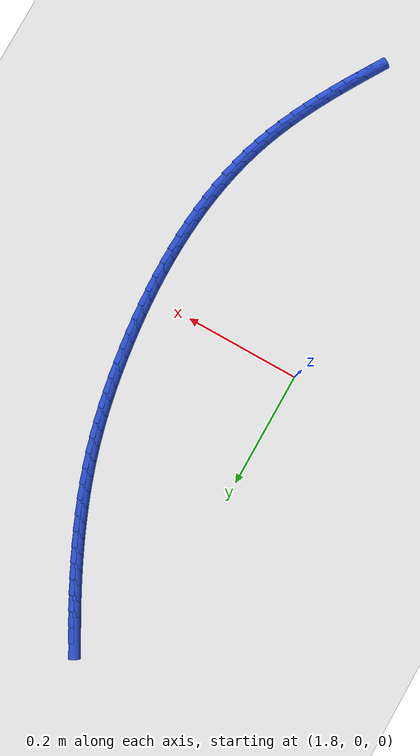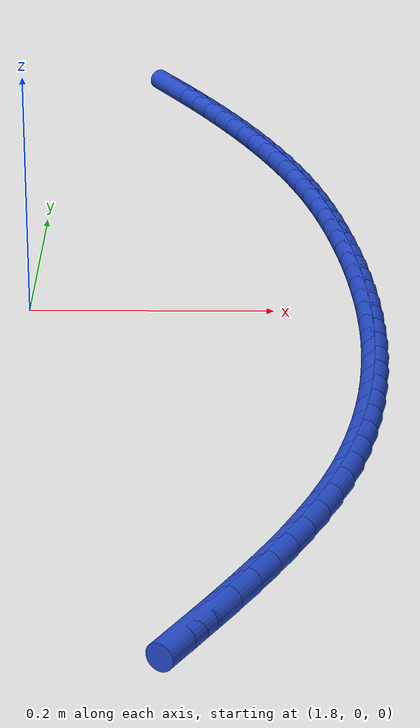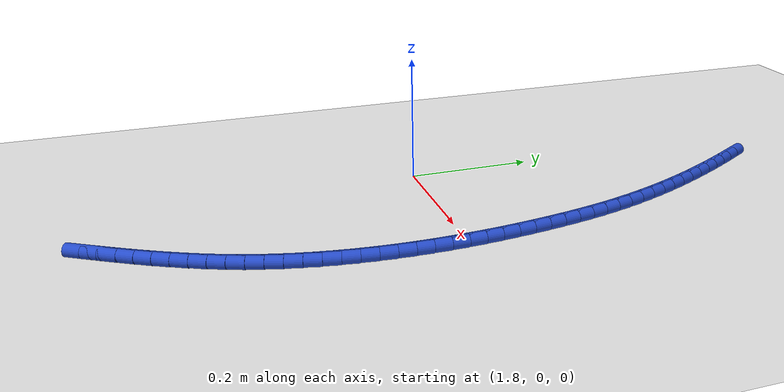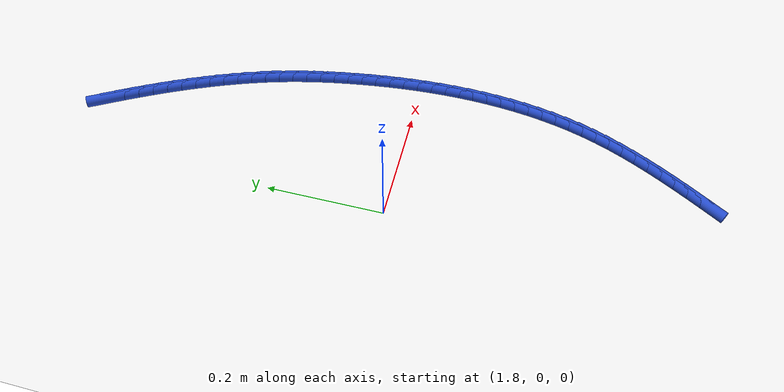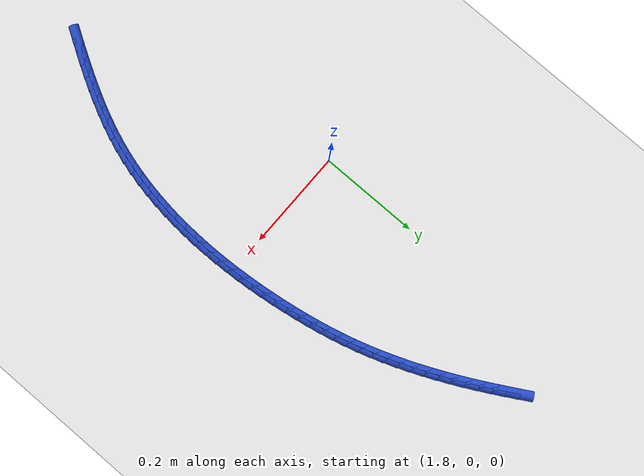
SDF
<sdf version="1.6">
 <world name="default">
  <model name="ground_plane">
   <static>1</static>
   <link name="link">
    <collision name="collision">
     <geometry><plane><normal>0 0 1</normal><size>100 100</size></plane></geometry>
     <surface><friction><ode><mu>100</mu><mu2>50</mu2></ode></friction></surface>
    </collision>
    <visual name="visual">
     <cast_shadows>0</cast_shadows>
     <geometry><plane><normal>0 0 1</normal><size>100 100</size></plane></geometry>
     <material>
      <script><uri>file://media/materials/scripts/gazebo.material</uri><name>Gazebo/WhiteGlow</name></script>
     </material>
    </visual>
   </link>
  </model>
  <model name="line">
   <link name="link_108">
    <pose>1.9086748497238153 0.5391528369617694 0.01 0 1.57 -1.056972690307041</pose>
    <collision name="collision">
     <geometry><cylinder><radius>0.01</radius><length>0.08</length></cylinder></geometry>
    </collision>
    <visual name="visual">
     <material>
      <script><name>Gazebo/Blue</name><uri>file://media/materials/scripts/gazebo.material</uri></script>
     </material>
     <geometry><cylinder><radius>0.01</radius><length>0.08</length></cylinder></geometry>
    </visual>
   </link>
   <link name="link_109">
    <pose>1.921213853982284 0.5169359023583384 0.01 0 1.57 -1.0704537765430884</pose>
    <collision name="collision">
     <geometry><cylinder><radius>0.01</radius><length>0.08</length></cylinder></geometry>
    </collision>
    <visual name="visual">
     <material>
      <script><name>Gazebo/Blue</name><uri>file://media/materials/scripts/gazebo.material</uri></script>
     </material>
     <geometry><cylinder><radius>0.01</radius><length>0.08</length></cylinder></geometry>
    </visual>
   </link>
   <link name="link_110">
    <pose>1.9334754315086917 0.4945094975735781 0.01 0 1.57 -1.0851146205517705</pose>
    <collision name="collision">
     <geometry><cylinder><radius>0.01</radius><length>0.08</length></cylinder></geometry>
    </collision>
    <visual name="visual">
     <material>
      <script><name>Gazebo/Blue</name><uri>file://media/materials/scripts/gazebo.material</uri></script>
     </material>
     <geometry><cylinder><radius>0.01</radius><length>0.08</length></cylinder></geometry>
    </visual>
   </link>
   <link name="link_111">
    <pose>1.945421828632252 0.471877487277748 0.01 0 1.57 -1.100980982359716</pose>
    <collision name="collision">
     <geometry><cylinder><radius>0.01</radius><length>0.08</length></cylinder></geometry>
    </collision>
    <visual name="visual">
     <material>
      <script><name>Gazebo/Blue</name><uri>file://media/materials/scripts/gazebo.material</uri></script>
     </material>
     <geometry><cylinder><radius>0.01</radius><length>0.08</length></cylinder></geometry>
    </visual>
   </link>
   <link name="link_112">
    <pose>1.9570152916821795 0.44904373614110643 0.01 0 1.57 -1.1180810585688827</pose>
    <collision name="collision">
     <geometry><cylinder><radius>0.01</radius><length>0.08</length></cylinder></geometry>
    </collision>
    <visual name="visual">
     <material>
      <script><name>Gazebo/Blue</name><uri>file://media/materials/scripts/gazebo.material</uri></script>
     </material>
     <geometry><cylinder><radius>0.01</radius><length>0.08</length></cylinder></geometry>
    </visual>
   </link>
   <link name="link_113">
    <pose>1.9682180669876874 0.4260121088339116 0.01 0 1.57 -1.1364448876936237</pose>
    <collision name="collision">
     <geometry><cylinder><radius>0.01</radius><length>0.08</length></cylinder></geometry>
    </collision>
    <visual name="visual">
     <material>
      <script><name>Gazebo/Blue</name><uri>file://media/materials/scripts/gazebo.material</uri></script>
     </material>
     <geometry><cylinder><radius>0.01</radius><length>0.08</length></cylinder></geometry>
    </visual>
   </link>
   <link name="link_114">
    <pose>1.978992400877991 0.4027864700264225 0.01 0 1.57 -1.1561036608033521</pose>
    <collision name="collision">
     <geometry><cylinder><radius>0.01</radius><length>0.08</length></cylinder></geometry>
    </collision>
    <visual name="visual">
     <material>
      <script><name>Gazebo/Blue</name><uri>file://media/materials/scripts/gazebo.material</uri></script>
     </material>
     <geometry><cylinder><radius>0.01</radius><length>0.08</length></cylinder></geometry>
    </visual>
   </link>
   <link name="link_115">
    <pose>1.9893005396823042 0.37937068438889693 0.01 0 1.57 -1.177088917752586</pose>
    <collision name="collision">
     <geometry><cylinder><radius>0.01</radius><length>0.08</length></cylinder></geometry>
    </collision>
    <visual name="visual">
     <material>
      <script><name>Gazebo/Blue</name><uri>file://media/materials/scripts/gazebo.material</uri></script>
     </material>
     <geometry><cylinder><radius>0.01</radius><length>0.08</length></cylinder></geometry>
    </visual>
   </link>
   <link name="link_116">
    <pose>1.99910472972984 0.35576861659159426 0.01 0 1.57 -1.1994316100958233</pose>
    <collision name="collision">
     <geometry><cylinder><radius>0.01</radius><length>0.08</length></cylinder></geometry>
    </collision>
    <visual name="visual">
     <material>
      <script><name>Gazebo/Blue</name><uri>file://media/materials/scripts/gazebo.material</uri></script>
     </material>
     <geometry><cylinder><radius>0.01</radius><length>0.08</length></cylinder></geometry>
    </visual>
   </link>
   <link name="link_117">
    <pose>2.0083672173498135 0.3319841313047728 0.01 0 1.57 -1.2231610138890856</pose>
    <collision name="collision">
     <geometry><cylinder><radius>0.01</radius><length>0.08</length></cylinder></geometry>
    </collision>
    <visual name="visual">
     <material>
      <script><name>Gazebo/Blue</name><uri>file://media/materials/scripts/gazebo.material</uri></script>
     </material>
     <geometry><cylinder><radius>0.01</radius><length>0.08</length></cylinder></geometry>
    </visual>
   </link>
   <link name="link_118">
    <pose>2.0170502488714392 0.30802109319869064 0.01 0 1.57 -1.2483034794891281</pose>
    <collision name="collision">
     <geometry><cylinder><radius>0.01</radius><length>0.08</length></cylinder></geometry>
    </collision>
    <visual name="visual">
     <material>
      <script><name>Gazebo/Blue</name><uri>file://media/materials/scripts/gazebo.material</uri></script>
     </material>
     <geometry><cylinder><radius>0.01</radius><length>0.08</length></cylinder></geometry>
    </visual>
   </link>
   <link name="link_119">
    <pose>2.0251160706239304 0.2838833669436071 0.01 0 1.57 -1.274881011735316</pose>
    <collision name="collision">
     <geometry><cylinder><radius>0.01</radius><length>0.08</length></cylinder></geometry>
    </collision>
    <visual name="visual">
     <material>
      <script><name>Gazebo/Blue</name><uri>file://media/materials/scripts/gazebo.material</uri></script>
     </material>
     <geometry><cylinder><radius>0.01</radius><length>0.08</length></cylinder></geometry>
    </visual>
   </link>
   <link name="link_120">
    <pose>2.0325269289365018 0.2595748172097804 0.01 0 1.57 -1.3026933074372433</pose>
    <collision name="collision">
     <geometry><cylinder><radius>0.01</radius><length>0.08</length></cylinder></geometry>
    </collision>
    <visual name="visual">
     <material>
      <script><name>Gazebo/Blue</name><uri>file://media/materials/scripts/gazebo.material</uri></script>
     </material>
     <geometry><cylinder><radius>0.01</radius><length>0.08</length></cylinder></geometry>
    </visual>
   </link>
   <link name="link_121">
    <pose>2.0392509205954075 0.23509874367653594 0.01 0 1.57 -1.3297375173153958</pose>
    <collision name="collision">
     <geometry><cylinder><radius>0.01</radius><length>0.08</length></cylinder></geometry>
    </collision>
    <visual name="visual">
     <material>
      <script><name>Gazebo/Blue</name><uri>file://media/materials/scripts/gazebo.material</uri></script>
     </material>
     <geometry><cylinder><radius>0.01</radius><length>0.08</length></cylinder></geometry>
    </visual>
   </link>
   <link name="link_122">
    <pose>2.045309744523885 0.21045326955216842 0.01 0 1.57 -1.354867256215454</pose>
    <collision name="collision">
     <geometry><cylinder><radius>0.01</radius><length>0.08</length></cylinder></geometry>
    </collision>
    <visual name="visual">
     <material>
      <script><name>Gazebo/Blue</name><uri>file://media/materials/scripts/gazebo.material</uri></script>
     </material>
     <geometry><cylinder><radius>0.01</radius><length>0.08</length></cylinder></geometry>
    </visual>
   </link>
   <link name="link_123">
    <pose>2.05075387848003 0.18563373881240178 0.01 0 1.57 -1.3779997736973069</pose>
    <collision name="collision">
     <geometry><cylinder><radius>0.01</radius><length>0.08</length></cylinder></geometry>
    </collision>
    <visual name="visual">
     <material>
      <script><name>Gazebo/Blue</name><uri>file://media/materials/scripts/gazebo.material</uri></script>
     </material>
     <geometry><cylinder><radius>0.01</radius><length>0.08</length></cylinder></geometry>
    </visual>
   </link>
   <link name="link_124">
    <pose>2.0556340756083245 0.16063546883831906 0.01 0 1.57 -1.399083949389034</pose>
    <collision name="collision">
     <geometry><cylinder><radius>0.01</radius><length>0.08</length></cylinder></geometry>
    </collision>
    <visual name="visual">
     <material>
      <script><name>Gazebo/Blue</name><uri>file://media/materials/scripts/gazebo.material</uri></script>
     </material>
     <geometry><cylinder><radius>0.01</radius><length>0.08</length></cylinder></geometry>
    </visual>
   </link>
   <link name="link_125">
    <pose>2.0600010890532485 0.13545377701100209 0.01 0 1.57 -1.4181132091004596</pose>
    <collision name="collision">
     <geometry><cylinder><radius>0.01</radius><length>0.08</length></cylinder></geometry>
    </collision>
    <visual name="visual">
     <material>
      <script><name>Gazebo/Blue</name><uri>file://media/materials/scripts/gazebo.material</uri></script>
     </material>
     <geometry><cylinder><radius>0.01</radius><length>0.08</length></cylinder></geometry>
    </visual>
   </link>
   <link name="link_126">
    <pose>2.0639049628428467 0.11008430119702796 0.01 0 1.57 -1.4362675726113825</pose>
    <collision name="collision">
     <geometry><cylinder><radius>0.01</radius><length>0.08</length></cylinder></geometry>
    </collision>
    <visual name="visual">
     <material>
      <script><name>Gazebo/Blue</name><uri>file://media/materials/scripts/gazebo.material</uri></script>
     </material>
     <geometry><cylinder><radius>0.01</radius><length>0.08</length></cylinder></geometry>
    </visual>
   </link>
   <link name="link_127">
    <pose>2.0673626053352185 0.08453765494403667 0.01 0 1.57 -1.4552566133938667</pose>
    <collision name="collision">
     <geometry><cylinder><radius>0.01</radius><length>0.08</length></cylinder></geometry>
    </collision>
    <visual name="visual">
     <material>
      <script><name>Gazebo/Blue</name><uri>file://media/materials/scripts/gazebo.material</uri></script>
     </material>
     <geometry><cylinder><radius>0.01</radius><length>0.08</length></cylinder></geometry>
    </visual>
   </link>
   <link name="link_128">
    <pose>2.0703443493797904 0.058845501621938426 0.01 0 1.57 -1.475263983127312</pose>
    <collision name="collision">
     <geometry><cylinder><radius>0.01</radius><length>0.08</length></cylinder></geometry>
    </collision>
    <visual name="visual">
     <material>
      <script><name>Gazebo/Blue</name><uri>file://media/materials/scripts/gazebo.material</uri></script>
     </material>
     <geometry><cylinder><radius>0.01</radius><length>0.08</length></cylinder></geometry>
    </visual>
   </link>
   <link name="link_129">
    <pose>2.0728170326868782 0.03304108423034947 0.01 0 1.57 -1.496351321237405</pose>
    <collision name="collision">
     <geometry><cylinder><radius>0.01</radius><length>0.08</length></cylinder></geometry>
    </collision>
    <visual name="visual">
     <material>
      <script><name>Gazebo/Blue</name><uri>file://media/materials/scripts/gazebo.material</uri></script>
     </material>
     <geometry><cylinder><radius>0.01</radius><length>0.08</length></cylinder></geometry>
    </visual>
   </link>
   <link name="link_130">
    <pose>2.0747474929668006 0.007157645768885976 0.01 0 1.57 -1.5185832822990526</pose>
    <collision name="collision">
     <geometry><cylinder><radius>0.01</radius><length>0.08</length></cylinder></geometry>
    </collision>
    <visual name="visual">
     <material>
      <script><name>Gazebo/Blue</name><uri>file://media/materials/scripts/gazebo.material</uri></script>
     </material>
     <geometry><cylinder><radius>0.01</radius><length>0.08</length></cylinder></geometry>
    </visual>
   </link>
   <link name="link_131">
    <pose>2.076102567929874 -0.018771570762835844 0.01 0 1.57 -1.542027205916121</pose>
    <collision name="collision">
     <geometry><cylinder><radius>0.01</radius><length>0.08</length></cylinder></geometry>
    </collision>
    <visual name="visual">
     <material>
      <script><name>Gazebo/Blue</name><uri>file://media/materials/scripts/gazebo.material</uri></script>
     </material>
     <geometry><cylinder><radius>0.01</radius><length>0.08</length></cylinder></geometry>
    </visual>
   </link>
   <link name="link_132">
    <pose>2.076849095286415 -0.04471332236519977 0.01 0 1.57 -1.5667526281561</pose>
    <collision name="collision">
     <geometry><cylinder><radius>0.01</radius><length>0.08</length></cylinder></geometry>
    </collision>
    <visual name="visual">
     <material>
      <script><name>Gazebo/Blue</name><uri>file://media/materials/scripts/gazebo.material</uri></script>
     </material>
     <geometry><cylinder><radius>0.01</radius><length>0.08</length></cylinder></geometry>
    </visual>
   </link>
   <link name="link_133">
    <pose>2.0769539127467413 -0.07063436603859034 0.01 0 1.57 1.5487620582884238</pose>
    <collision name="collision">
     <geometry><cylinder><radius>0.01</radius><length>0.08</length></cylinder></geometry>
    </collision>
    <visual name="visual">
     <material>
      <script><name>Gazebo/Blue</name><uri>file://media/materials/scripts/gazebo.material</uri></script>
     </material>
     <geometry><cylinder><radius>0.01</radius><length>0.08</length></cylinder></geometry>
    </visual>
   </link>
   <link name="link_134">
    <pose>2.07638385802117 -0.09650145878338984 0.01 0 1.57 1.5212599176866755</pose>
    <collision name="collision">
     <geometry><cylinder><radius>0.01</radius><length>0.08</length></cylinder></geometry>
    </collision>
    <visual name="visual">
     <material>
      <script><name>Gazebo/Blue</name><uri>file://media/materials/scripts/gazebo.material</uri></script>
     </material>
     <geometry><cylinder><radius>0.01</radius><length>0.08</length></cylinder></geometry>
    </visual>
   </link>
   <link name="link_135">
    <pose>2.075105768820018 -0.12228135759998285 0.01 0 1.57 1.4922626100018135</pose>
    <collision name="collision">
     <geometry><cylinder><radius>0.01</radius><length>0.08</length></cylinder></geometry>
    </collision>
    <visual name="visual">
     <material>
      <script><name>Gazebo/Blue</name><uri>file://media/materials/scripts/gazebo.material</uri></script>
     </material>
     <geometry><cylinder><radius>0.01</radius><length>0.08</length></cylinder></geometry>
    </visual>
   </link>
   <link name="link_136">
    <pose>2.0730864828536033 -0.14794081948875307 0.01 0 1.57 1.4617013316525587</pose>
    <collision name="collision">
     <geometry><cylinder><radius>0.01</radius><length>0.08</length></cylinder></geometry>
    </collision>
    <visual name="visual">
     <material>
      <script><name>Gazebo/Blue</name><uri>file://media/materials/scripts/gazebo.material</uri></script>
     </material>
     <geometry><cylinder><radius>0.01</radius><length>0.08</length></cylinder></geometry>
    </visual>
   </link>
   <link name="link_137">
    <pose>2.070292837832242 -0.17344660145008442 0.01 0 1.57 1.4295114079655817</pose>
    <collision name="collision">
     <geometry><cylinder><radius>0.01</radius><length>0.08</length></cylinder></geometry>
    </collision>
    <visual name="visual">
     <material>
      <script><name>Gazebo/Blue</name><uri>file://media/materials/scripts/gazebo.material</uri></script>
     </material>
     <geometry><cylinder><radius>0.01</radius><length>0.08</length></cylinder></geometry>
    </visual>
   </link>
   <link name="link_138">
    <pose>2.0666916714662515 -0.19876546048436056 0.01 0 1.57 1.3956346527098766</pose>
    <collision name="collision">
     <geometry><cylinder><radius>0.01</radius><length>0.08</length></cylinder></geometry>
    </collision>
    <visual name="visual">
     <material>
      <script><name>Gazebo/Blue</name><uri>file://media/materials/scripts/gazebo.material</uri></script>
     </material>
     <geometry><cylinder><radius>0.01</radius><length>0.08</length></cylinder></geometry>
    </visual>
   </link>
   <link name="link_139">
    <pose>2.0622498214659495 -0.22386415359196538 0.01 0 1.57 1.360022167961919</pose>
    <collision name="collision">
     <geometry><cylinder><radius>0.01</radius><length>0.08</length></cylinder></geometry>
    </collision>
    <visual name="visual">
     <material>
      <script><name>Gazebo/Blue</name><uri>file://media/materials/scripts/gazebo.material</uri></script>
     </material>
     <geometry><cylinder><radius>0.01</radius><length>0.08</length></cylinder></geometry>
    </visual>
   </link>
   <link name="link_140">
    <pose>2.0569341255416522 -0.24870943777328333 0.01 0 1.57 1.3226375758306803</pose>
    <collision name="collision">
     <geometry><cylinder><radius>0.01</radius><length>0.08</length></cylinder></geometry>
    </collision>
    <visual name="visual">
     <material>
      <script><name>Gazebo/Blue</name><uri>file://media/materials/scripts/gazebo.material</uri></script>
     </material>
     <geometry><cylinder><radius>0.01</radius><length>0.08</length></cylinder></geometry>
    </visual>
   </link>
   <link name="link_141">
    <pose>2.050711421403678 -0.2732680700286968 0.01 0 1.57 1.283460632498335</pose>
    <collision name="collision">
     <geometry><cylinder><radius>0.01</radius><length>0.08</length></cylinder></geometry>
    </collision>
    <visual name="visual">
     <material>
      <script><name>Gazebo/Blue</name><uri>file://media/materials/scripts/gazebo.material</uri></script>
     </material>
     <geometry><cylinder><radius>0.01</radius><length>0.08</length></cylinder></geometry>
    </visual>
   </link>
   <link name="link_142">
    <pose>2.0435485467623415 -0.29750680735859014 0.01 0 1.57 1.2425139712815294</pose>
    <collision name="collision">
     <geometry><cylinder><radius>0.01</radius><length>0.08</length></cylinder></geometry>
    </collision>
    <visual name="visual">
     <material>
      <script><name>Gazebo/Blue</name><uri>file://media/materials/scripts/gazebo.material</uri></script>
     </material>
     <geometry><cylinder><radius>0.01</radius><length>0.08</length></cylinder></geometry>
    </visual>
   </link>
   <link name="link_143">
    <pose>2.0354128522330397 -0.3213926893045017 0.01 0 1.57 1.2017640645553012</pose>
    <collision name="collision">
     <geometry><cylinder><radius>0.01</radius><length>0.08</length></cylinder></geometry>
    </collision>
    <visual name="visual">
     <material>
      <script><name>Gazebo/Blue</name><uri>file://media/materials/scripts/gazebo.material</uri></script>
     </material>
     <geometry><cylinder><radius>0.01</radius><length>0.08</length></cylinder></geometry>
    </visual>
   </link>
   <link name="link_144">
    <pose>2.0263149738117523 -0.34491659978377054 0.01 0 1.57 1.16468583064807</pose>
    <collision name="collision">
     <geometry><cylinder><radius>0.01</radius><length>0.08</length></cylinder></geometry>
    </collision>
    <visual name="visual">
     <material>
      <script><name>Gazebo/Blue</name><uri>file://media/materials/scripts/gazebo.material</uri></script>
     </material>
     <geometry><cylinder><radius>0.01</radius><length>0.08</length></cylinder></geometry>
    </visual>
   </link>
   <link name="link_145">
    <pose>2.016341036832776 -0.3681110071038302 0.01 0 1.57 1.1317016972054526</pose>
    <collision name="collision">
     <geometry><cylinder><radius>0.01</radius><length>0.08</length></cylinder></geometry>
    </collision>
    <visual name="visual">
     <material>
      <script><name>Gazebo/Blue</name><uri>file://media/materials/scripts/gazebo.material</uri></script>
     </material>
     <geometry><cylinder><radius>0.01</radius><length>0.08</length></cylinder></geometry>
    </visual>
   </link>
   <link name="link_146">
    <pose>2.0055847517146295 -0.39101255792508754 0.01 0 1.57 1.1028391985435977</pose>
    <collision name="collision">
     <geometry><cylinder><radius>0.01</radius><length>0.08</length></cylinder></geometry>
    </collision>
    <visual name="visual">
     <material>
      <script><name>Gazebo/Blue</name><uri>file://media/materials/scripts/gazebo.material</uri></script>
     </material>
     <geometry><cylinder><radius>0.01</radius><length>0.08</length></cylinder></geometry>
    </visual>
   </link>
   <link name="link_147">
    <pose>1.9941398288758296 -0.4136578989079484 0.01 0 1.57 1.078085333784084</pose>
    <collision name="collision">
     <geometry><cylinder><radius>0.01</radius><length>0.08</length></cylinder></geometry>
    </collision>
    <visual name="visual">
     <material>
      <script><name>Gazebo/Blue</name><uri>file://media/materials/scripts/gazebo.material</uri></script>
     </material>
     <geometry><cylinder><radius>0.01</radius><length>0.08</length></cylinder></geometry>
    </visual>
   </link>
   <link name="link_148">
    <pose>1.9820999787348947 -0.4360836767128192 0.01 0 1.57 1.057401393982525</pose>
    <collision name="collision">
     <geometry><cylinder><radius>0.01</radius><length>0.08</length></cylinder></geometry>
    </collision>
    <visual name="visual">
     <material>
      <script><name>Gazebo/Blue</name><uri>file://media/materials/scripts/gazebo.material</uri></script>
     </material>
     <geometry><cylinder><radius>0.01</radius><length>0.08</length></cylinder></geometry>
    </visual>
   </link>
   <link name="link_149">
    <pose>1.969558911710342 -0.4583265380001071 0.01 0 1.57 1.0407355301384782</pose>
    <collision name="collision">
     <geometry><cylinder><radius>0.01</radius><length>0.08</length></cylinder></geometry>
    </collision>
    <visual name="visual">
     <material>
      <script><name>Gazebo/Blue</name><uri>file://media/materials/scripts/gazebo.material</uri></script>
     </material>
     <geometry><cylinder><radius>0.01</radius><length>0.08</length></cylinder></geometry>
    </visual>
   </link>
   <link name="link_150">
    <pose>1.9566103382206894 -0.4804231294302168 0.01 0 1.57 1.0280328660097333</pose>
    <collision name="collision">
     <geometry><cylinder><radius>0.01</radius><length>0.08</length></cylinder></geometry>
    </collision>
    <visual name="visual">
     <material>
      <script><name>Gazebo/Blue</name><uri>file://media/materials/scripts/gazebo.material</uri></script>
     </material>
     <geometry><cylinder><radius>0.01</radius><length>0.08</length></cylinder></geometry>
    </visual>
   </link>
   <link name="link_151">
    <pose>1.943347968684456 -0.5024100976635557 0.01 0 1.57 1.0192432342789066</pose>
    <collision name="collision">
     <geometry><cylinder><radius>0.01</radius><length>0.08</length></cylinder></geometry>
    </collision>
    <visual name="visual">
     <material>
      <script><name>Gazebo/Blue</name><uri>file://media/materials/scripts/gazebo.material</uri></script>
     </material>
     <geometry><cylinder><radius>0.01</radius><length>0.08</length></cylinder></geometry>
    </visual>
   </link>
  </model>
 </world>
</sdf>
